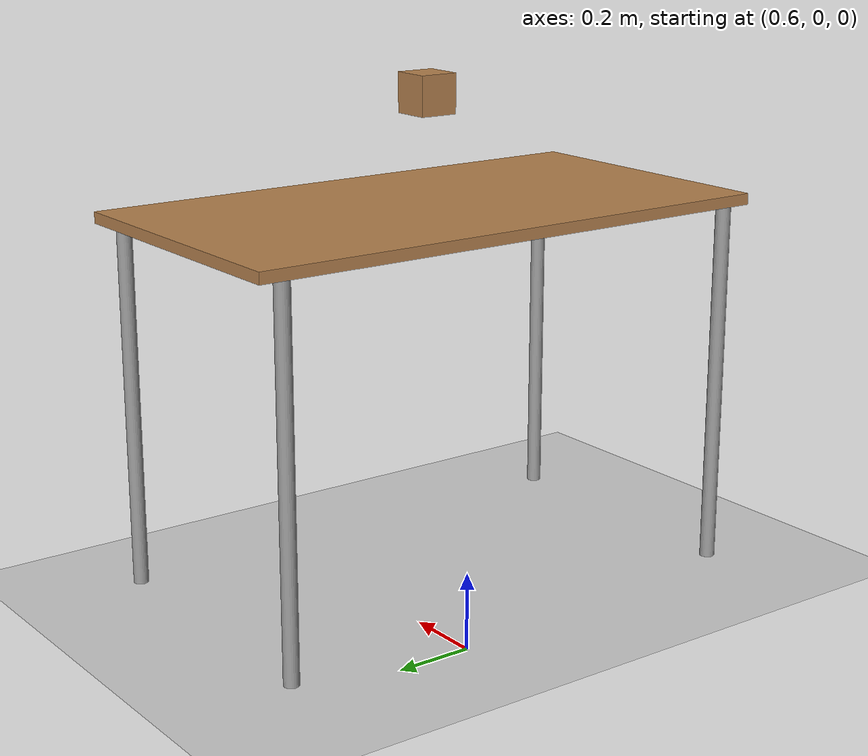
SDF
<sdf version="1.6">
 <world name="default">
  <model name="ground_plane">
   <static>1</static>
   <link name="link">
    <collision name="collision">
     <geometry><plane><normal>0 0 1</normal><size>100 100</size></plane></geometry>
     <surface><friction><ode><mu>1</mu><mu2>1</mu2></ode></friction></surface>
    </collision>
    <visual name="visual">
     <cast_shadows>0</cast_shadows>
     <geometry><plane><normal>0 0 1</normal><size>100 100</size></plane></geometry>
     <material>
      <script><uri>file://media/materials/scripts/gazebo.material</uri><name>Gazebo/Grey</name></script>
     </material>
    </visual>
   </link>
  </model>
  <model name="table">
   <static>1</static>
   <link name="link">
    <collision name="surface">
     <pose>0 0 1.18 0 -0 0</pose>
     <geometry><box><size>1.5 0.8 0.03</size></box></geometry>
     <surface><friction><ode><mu>0.3</mu><mu2>0.3</mu2></ode></friction></surface>
    </collision>
    <visual name="visual1">
     <pose>0 0 1 0 -0 0</pose>
     <geometry><box><size>1.5 0.8 0.03</size></box></geometry>
     <material>
      <script><uri>file://media/materials/scripts/gazebo.material</uri><name>Gazebo/Wood</name></script>
     </material>
    </visual>
    <collision name="front_left_leg">
     <pose>0.68 0.38 0.5 0 -0 0</pose>
     <geometry><cylinder><radius>0.02</radius><length>1</length></cylinder></geometry>
    </collision>
    <visual name="front_left_leg">
     <pose>0.68 0.38 0.5 0 -0 0</pose>
     <geometry><cylinder><radius>0.02</radius><length>1</length></cylinder></geometry>
     <material>
      <script><uri>file://media/materials/scripts/gazebo.material</uri><name>Gazebo/Grey</name></script>
     </material>
    </visual>
    <collision name="front_right_leg">
     <pose>0.68 -0.38 0.5 0 -0 0</pose>
     <geometry><cylinder><radius>0.02</radius><length>1</length></cylinder></geometry>
    </collision>
    <visual name="front_right_leg">
     <pose>0.68 -0.38 0.5 0 -0 0</pose>
     <geometry><cylinder><radius>0.02</radius><length>1</length></cylinder></geometry>
     <material>
      <script><uri>file://media/materials/scripts/gazebo.material</uri><name>Gazebo/Grey</name></script>
     </material>
    </visual>
    <collision name="back_right_leg">
     <pose>-0.68 -0.38 0.5 0 -0 0</pose>
     <geometry><cylinder><radius>0.02</radius><length>1</length></cylinder></geometry>
    </collision>
    <visual name="back_right_leg">
     <pose>-0.68 -0.38 0.5 0 -0 0</pose>
     <geometry><cylinder><radius>0.02</radius><length>1</length></cylinder></geometry>
     <material>
      <script><uri>file://media/materials/scripts/gazebo.material</uri><name>Gazebo/Grey</name></script>
     </material>
    </visual>
    <collision name="back_left_leg">
     <pose>-0.68 0.38 0.5 0 -0 0</pose>
     <geometry><cylinder><radius>0.02</radius><length>1</length></cylinder></geometry>
    </collision>
    <visual name="back_left_leg">
     <pose>-0.68 0.38 0.5 0 -0 0</pose>
     <geometry><cylinder><radius>0.02</radius><length>1</length></cylinder></geometry>
     <material>
      <script><uri>file://media/materials/scripts/gazebo.material</uri><name>Gazebo/Grey</name></script>
     </material>
    </visual>
   </link>
   <pose>1.06974 -0.229484 0 0 -0 1.57</pose>
  </model>
  <model name="wood_cube_10cm_0">
   <link name="link">
    <pose>0 0 0.05 0 -0 0</pose>
    <inertial>
     <mass>0.5167</mass>
     <inertia>
      <ixx>0.000861167</ixx>
      <ixy>0</ixy>
      <ixz>0</ixz>
      <iyy>0.00286117</iyy>
      <iyz>0</iyz>
      <izz>0.000861167</izz>
     </inertia>
    </inertial>
    <collision name="collision">
     <geometry><box><size>0.1 0.1 0.1</size></box></geometry>
     <surface>
      <contact>
       <poissons_ratio>0.347</poissons_ratio>
       <elastic_modulus>8.8e+09</elastic_modulus>
       <ode><kp>100000</kp><kd>100</kd><max_vel>100</max_vel><min_depth>0.001</min_depth></ode>
      </contact>
      <friction>
       <torsional>
        <coefficient>1</coefficient>
        <use_patch_radius>0</use_patch_radius>
        <surface_radius>0.01</surface_radius>
       </torsional>
      </friction>
     </surface>
    </collision>
    <visual name="visual">
     <geometry><box><size>0.1 0.1 0.1</size></box></geometry>
     <material>
      <script><uri>file://media/materials/scripts/gazebo.material</uri><name>Gazebo/Wood</name></script>
     </material>
    </visual>
   </link>
   <pose>0.874095 -0.116055 1.32169 -2.19356 -1.57079 -0.952073</pose>
  </model>
 </world>
</sdf>
